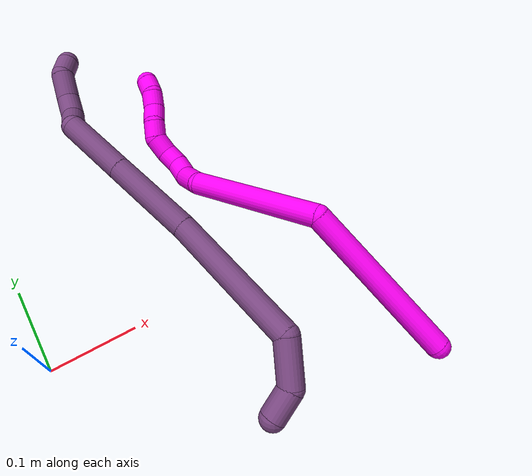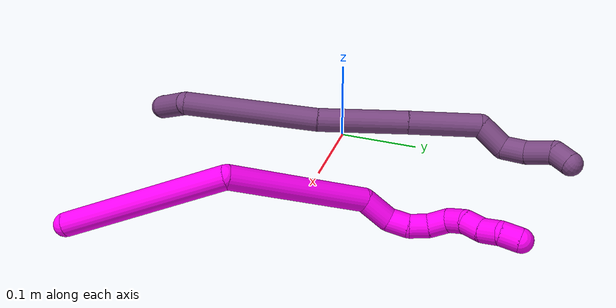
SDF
<sdf version="1.7">
 <world name="default">
  <model name="10">
   <static>0</static>
   <link name="10">
    <collision name="collision-cylinder-e_1_1_4">
     <pose>0.02539 0.083597 0.003419 -1.52992 0.294635 -0.282992</pose>
     <geometry><cylinder><radius>0.0125</radius><length>0.17487</length></cylinder></geometry>
     <surface>
      <friction><ode><mu>1.16</mu><mu2>1.16</mu2><slip1>0</slip1><slip2>0</slip2></ode></friction>
      <contact><ode><kp>1e+06</kp><kd>1</kd><max_vel>0</max_vel><min_depth>0.001</min_depth></ode></contact>
     </surface>
    </collision>
    <visual name="visual-cylinder-e_1_1_4">
     <pose>0.02539 0.083597 0.003419 -1.52992 0.294635 -0.282992</pose>
     <geometry><cylinder><radius>0.0125</radius><length>0.17487</length></cylinder></geometry>
     <material><ambient>1 0 0.964706 1</ambient></material>
    </visual>
    <collision name="collision-cylinder-e_2_4_5">
     <pose>0.056483 0.220485 0.057554 -0.810145 0.077354 -0.033182</pose>
     <geometry><cylinder><radius>0.0125</radius><length>0.147572</length></cylinder></geometry>
     <surface>
      <friction><ode><mu>1.16</mu><mu2>1.16</mu2><slip1>0</slip1><slip2>0</slip2></ode></friction>
      <contact><ode><kp>1e+06</kp><kd>1</kd><max_vel>0</max_vel><min_depth>0.001</min_depth></ode></contact>
     </surface>
    </collision>
    <visual name="visual-cylinder-e_2_4_5">
     <pose>0.056483 0.220485 0.057554 -0.810145 0.077354 -0.033182</pose>
     <geometry><cylinder><radius>0.0125</radius><length>0.147572</length></cylinder></geometry>
     <material><ambient>1 0 0.964706 1</ambient></material>
    </visual>
    <collision name="collision-cylinder-e_3_5_6">
     <pose>0.055119 0.2842 0.118996 -0.771104 -0.441292 0.181569</pose>
     <geometry><cylinder><radius>0.0125</radius><length>0.033087</length></cylinder></geometry>
     <surface>
      <friction><ode><mu>1.16</mu><mu2>1.16</mu2><slip1>0</slip1><slip2>0</slip2></ode></friction>
      <contact><ode><kp>1e+06</kp><kd>1</kd><max_vel>0</max_vel><min_depth>0.001</min_depth></ode></contact>
     </surface>
    </collision>
    <visual name="visual-cylinder-e_3_5_6">
     <pose>0.055119 0.2842 0.118996 -0.771104 -0.441292 0.181569</pose>
     <geometry><cylinder><radius>0.0125</radius><length>0.033087</length></cylinder></geometry>
     <material><ambient>1 0 0.964706 1</ambient></material>
    </visual>
    <collision name="collision-cylinder-e_4_6_7">
     <pose>0.045418 0.304968 0.132612 -1.29849 -0.240611 0.183001</pose>
     <geometry><cylinder><radius>0.0125</radius><length>0.022114</length></cylinder></geometry>
     <surface>
      <friction><ode><mu>1.16</mu><mu2>1.16</mu2><slip1>0</slip1><slip2>0</slip2></ode></friction>
      <contact><ode><kp>1e+06</kp><kd>1</kd><max_vel>0</max_vel><min_depth>0.001</min_depth></ode></contact>
     </surface>
    </collision>
    <visual name="visual-cylinder-e_4_6_7">
     <pose>0.045418 0.304968 0.132612 -1.29849 -0.240611 0.183001</pose>
     <geometry><cylinder><radius>0.0125</radius><length>0.022114</length></cylinder></geometry>
     <material><ambient>1 0 0.964706 1</ambient></material>
    </visual>
    <collision name="collision-cylinder-e_5_7_8">
     <pose>0.043751 0.325064 0.137806 -1.33866 0.09621 -0.076139</pose>
     <geometry><cylinder><radius>0.0125</radius><length>0.020138</length></cylinder></geometry>
     <surface>
      <friction><ode><mu>1.16</mu><mu2>1.16</mu2><slip1>0</slip1><slip2>0</slip2></ode></friction>
      <contact><ode><kp>1e+06</kp><kd>1</kd><max_vel>0</max_vel><min_depth>0.001</min_depth></ode></contact>
     </surface>
    </collision>
    <visual name="visual-cylinder-e_5_7_8">
     <pose>0.043751 0.325064 0.137806 -1.33866 0.09621 -0.076139</pose>
     <geometry><cylinder><radius>0.0125</radius><length>0.020138</length></cylinder></geometry>
     <material><ambient>1 0 0.964706 1</ambient></material>
    </visual>
    <collision name="collision-cylinder-e_6_8_9">
     <pose>0.047588 0.345285 0.139545 -1.62489 0.267237 -0.281907</pose>
     <geometry><cylinder><radius>0.0125</radius><length>0.021737</length></cylinder></geometry>
     <surface>
      <friction><ode><mu>1.16</mu><mu2>1.16</mu2><slip1>0</slip1><slip2>0</slip2></ode></friction>
      <contact><ode><kp>1e+06</kp><kd>1</kd><max_vel>0</max_vel><min_depth>0.001</min_depth></ode></contact>
     </surface>
    </collision>
    <visual name="visual-cylinder-e_6_8_9">
     <pose>0.047588 0.345285 0.139545 -1.62489 0.267237 -0.281907</pose>
     <geometry><cylinder><radius>0.0125</radius><length>0.021737</length></cylinder></geometry>
     <material><ambient>1 0 0.964706 1</ambient></material>
    </visual>
    <collision name="collision-cylinder-e_7_9_10">
     <pose>0.04856 0.364918 0.135204 -1.96142 -0.189192 0.281482</pose>
     <geometry><cylinder><radius>0.0125</radius><length>0.020183</length></cylinder></geometry>
     <surface>
      <friction><ode><mu>1.16</mu><mu2>1.16</mu2><slip1>0</slip1><slip2>0</slip2></ode></friction>
      <contact><ode><kp>1e+06</kp><kd>1</kd><max_vel>0</max_vel><min_depth>0.001</min_depth></ode></contact>
     </surface>
    </collision>
    <visual name="visual-cylinder-e_7_9_10">
     <pose>0.04856 0.364918 0.135204 -1.96142 -0.189192 0.281482</pose>
     <geometry><cylinder><radius>0.0125</radius><length>0.020183</length></cylinder></geometry>
     <material><ambient>1 0 0.964706 1</ambient></material>
    </visual>
    <collision name="collision-cylinder-e_8_10_11">
     <pose>0.041786 0.382815 0.130102 -1.72168 -0.504384 0.582579</pose>
     <geometry><cylinder><radius>0.0125</radius><length>0.020179</length></cylinder></geometry>
     <surface>
      <friction><ode><mu>1.16</mu><mu2>1.16</mu2><slip1>0</slip1><slip2>0</slip2></ode></friction>
      <contact><ode><kp>1e+06</kp><kd>1</kd><max_vel>0</max_vel><min_depth>0.001</min_depth></ode></contact>
     </surface>
    </collision>
    <visual name="visual-cylinder-e_8_10_11">
     <pose>0.041786 0.382815 0.130102 -1.72168 -0.504384 0.582579</pose>
     <geometry><cylinder><radius>0.0125</radius><length>0.020179</length></cylinder></geometry>
     <material><ambient>1 0 0.964706 1</ambient></material>
    </visual>
    <collision name="collision-cylinder-e_9_11_12">
     <pose>0.034717 0.400872 0.125892 -1.87068 -0.221037 0.298694</pose>
     <geometry><cylinder><radius>0.0125</radius><length>0.020006</length></cylinder></geometry>
     <surface>
      <friction><ode><mu>1.16</mu><mu2>1.16</mu2><slip1>0</slip1><slip2>0</slip2></ode></friction>
      <contact><ode><kp>1e+06</kp><kd>1</kd><max_vel>0</max_vel><min_depth>0.001</min_depth></ode></contact>
     </surface>
    </collision>
    <visual name="visual-cylinder-e_9_11_12">
     <pose>0.034717 0.400872 0.125892 -1.87068 -0.221037 0.298694</pose>
     <geometry><cylinder><radius>0.0125</radius><length>0.020006</length></cylinder></geometry>
     <material><ambient>1 0 0.964706 1</ambient></material>
    </visual>
    <collision name="collision-cylinder-e_10_12_2">
     <pose>0.029417 0.419676 0.124278 -1.43768 -0.31417 0.275432</pose>
     <geometry><cylinder><radius>0.0125</radius><length>0.020113</length></cylinder></geometry>
     <surface>
      <friction><ode><mu>1.16</mu><mu2>1.16</mu2><slip1>0</slip1><slip2>0</slip2></ode></friction>
      <contact><ode><kp>1e+06</kp><kd>1</kd><max_vel>0</max_vel><min_depth>0.001</min_depth></ode></contact>
     </surface>
    </collision>
    <visual name="visual-cylinder-e_10_12_2">
     <pose>0.029417 0.419676 0.124278 -1.43768 -0.31417 0.275432</pose>
     <geometry><cylinder><radius>0.0125</radius><length>0.020113</length></cylinder></geometry>
     <material><ambient>1 0 0.964706 1</ambient></material>
    </visual>
    <collision name="collision-sphere-2">
     <pose>0.026309 0.429156 0.125547 0 -0 0</pose>
     <geometry><sphere><radius>0.0125</radius></sphere></geometry>
     <surface>
      <friction><ode><mu>1.16</mu><mu2>1.16</mu2><slip1>0</slip1><slip2>0</slip2></ode></friction>
      <contact><ode><kp>1e+06</kp><kd>1</kd><max_vel>0</max_vel><min_depth>0.001</min_depth></ode></contact>
     </surface>
    </collision>
    <visual name="visual-sphere-2">
     <pose>0.026309 0.429156 0.125547 0 -0 0</pose>
     <geometry><sphere><radius>0.0125</radius></sphere></geometry>
     <material><ambient>1 0 0.964706 1</ambient></material>
    </visual>
    <collision name="collision-sphere-12">
     <pose>0.032524 0.410196 0.123009 0 -0 0</pose>
     <geometry><sphere><radius>0.0125</radius></sphere></geometry>
     <surface>
      <friction><ode><mu>1.16</mu><mu2>1.16</mu2><slip1>0</slip1><slip2>0</slip2></ode></friction>
      <contact><ode><kp>1e+06</kp><kd>1</kd><max_vel>0</max_vel><min_depth>0.001</min_depth></ode></contact>
     </surface>
    </collision>
    <visual name="visual-sphere-12">
     <pose>0.032524 0.410196 0.123009 0 -0 0</pose>
     <geometry><sphere><radius>0.0125</radius></sphere></geometry>
     <material><ambient>1 0 0.964706 1</ambient></material>
    </visual>
    <collision name="collision-sphere-11">
     <pose>0.036911 0.391548 0.128775 0 -0 0</pose>
     <geometry><sphere><radius>0.0125</radius></sphere></geometry>
     <surface>
      <friction><ode><mu>1.16</mu><mu2>1.16</mu2><slip1>0</slip1><slip2>0</slip2></ode></friction>
      <contact><ode><kp>1e+06</kp><kd>1</kd><max_vel>0</max_vel><min_depth>0.001</min_depth></ode></contact>
     </surface>
    </collision>
    <visual name="visual-sphere-11">
     <pose>0.036911 0.391548 0.128775 0 -0 0</pose>
     <geometry><sphere><radius>0.0125</radius></sphere></geometry>
     <material><ambient>1 0 0.964706 1</ambient></material>
    </visual>
    <collision name="collision-sphere-10">
     <pose>0.046662 0.374083 0.13143 0 -0 0</pose>
     <geometry><sphere><radius>0.0125</radius></sphere></geometry>
     <surface>
      <friction><ode><mu>1.16</mu><mu2>1.16</mu2><slip1>0</slip1><slip2>0</slip2></ode></friction>
      <contact><ode><kp>1e+06</kp><kd>1</kd><max_vel>0</max_vel><min_depth>0.001</min_depth></ode></contact>
     </surface>
    </collision>
    <visual name="visual-sphere-10">
     <pose>0.046662 0.374083 0.13143 0 -0 0</pose>
     <geometry><sphere><radius>0.0125</radius></sphere></geometry>
     <material><ambient>1 0 0.964706 1</ambient></material>
    </visual>
    <collision name="collision-sphere-9">
     <pose>0.050458 0.355753 0.138978 0 -0 0</pose>
     <geometry><sphere><radius>0.0125</radius></sphere></geometry>
     <surface>
      <friction><ode><mu>1.16</mu><mu2>1.16</mu2><slip1>0</slip1><slip2>0</slip2></ode></friction>
      <contact><ode><kp>1e+06</kp><kd>1</kd><max_vel>0</max_vel><min_depth>0.001</min_depth></ode></contact>
     </surface>
    </collision>
    <visual name="visual-sphere-9">
     <pose>0.050458 0.355753 0.138978 0 -0 0</pose>
     <geometry><sphere><radius>0.0125</radius></sphere></geometry>
     <material><ambient>1 0 0.964706 1</ambient></material>
    </visual>
    <collision name="collision-sphere-4">
     <pose>0.050781 0.167195 0.006838 0 -0 0</pose>
     <geometry><sphere><radius>0.0125</radius></sphere></geometry>
     <surface>
      <friction><ode><mu>1.16</mu><mu2>1.16</mu2><slip1>0</slip1><slip2>0</slip2></ode></friction>
      <contact><ode><kp>1e+06</kp><kd>1</kd><max_vel>0</max_vel><min_depth>0.001</min_depth></ode></contact>
     </surface>
    </collision>
    <visual name="visual-sphere-4">
     <pose>0.050781 0.167195 0.006838 0 -0 0</pose>
     <geometry><sphere><radius>0.0125</radius></sphere></geometry>
     <material><ambient>1 0 0.964706 1</ambient></material>
    </visual>
    <collision name="collision-sphere-1">
     <geometry><sphere><radius>0.0125</radius></sphere></geometry>
     <surface>
      <friction><ode><mu>1.16</mu><mu2>1.16</mu2><slip1>0</slip1><slip2>0</slip2></ode></friction>
      <contact><ode><kp>1e+06</kp><kd>1</kd><max_vel>0</max_vel><min_depth>0.001</min_depth></ode></contact>
     </surface>
    </collision>
    <visual name="visual-sphere-1">
     <geometry><sphere><radius>0.0125</radius></sphere></geometry>
     <material><ambient>1 0 0.964706 1</ambient></material>
    </visual>
    <collision name="collision-sphere-8">
     <pose>0.044718 0.334818 0.140112 0 -0 0</pose>
     <geometry><sphere><radius>0.0125</radius></sphere></geometry>
     <surface>
      <friction><ode><mu>1.16</mu><mu2>1.16</mu2><slip1>0</slip1><slip2>0</slip2></ode></friction>
      <contact><ode><kp>1e+06</kp><kd>1</kd><max_vel>0</max_vel><min_depth>0.001</min_depth></ode></contact>
     </surface>
    </collision>
    <visual name="visual-sphere-8">
     <pose>0.044718 0.334818 0.140112 0 -0 0</pose>
     <geometry><sphere><radius>0.0125</radius></sphere></geometry>
     <material><ambient>1 0 0.964706 1</ambient></material>
    </visual>
    <collision name="collision-sphere-5">
     <pose>0.062185 0.273775 0.108269 0 -0 0</pose>
     <geometry><sphere><radius>0.0125</radius></sphere></geometry>
     <surface>
      <friction><ode><mu>1.16</mu><mu2>1.16</mu2><slip1>0</slip1><slip2>0</slip2></ode></friction>
      <contact><ode><kp>1e+06</kp><kd>1</kd><max_vel>0</max_vel><min_depth>0.001</min_depth></ode></contact>
     </surface>
    </collision>
    <visual name="visual-sphere-5">
     <pose>0.062185 0.273775 0.108269 0 -0 0</pose>
     <geometry><sphere><radius>0.0125</radius></sphere></geometry>
     <material><ambient>1 0 0.964706 1</ambient></material>
    </visual>
    <collision name="collision-sphere-6">
     <pose>0.048053 0.294625 0.129724 0 -0 0</pose>
     <geometry><sphere><radius>0.0125</radius></sphere></geometry>
     <surface>
      <friction><ode><mu>1.16</mu><mu2>1.16</mu2><slip1>0</slip1><slip2>0</slip2></ode></friction>
      <contact><ode><kp>1e+06</kp><kd>1</kd><max_vel>0</max_vel><min_depth>0.001</min_depth></ode></contact>
     </surface>
    </collision>
    <visual name="visual-sphere-6">
     <pose>0.048053 0.294625 0.129724 0 -0 0</pose>
     <geometry><sphere><radius>0.0125</radius></sphere></geometry>
     <material><ambient>1 0 0.964706 1</ambient></material>
    </visual>
    <collision name="collision-sphere-7">
     <pose>0.042783 0.315311 0.1355 0 -0 0</pose>
     <geometry><sphere><radius>0.0125</radius></sphere></geometry>
     <surface>
      <friction><ode><mu>1.16</mu><mu2>1.16</mu2><slip1>0</slip1><slip2>0</slip2></ode></friction>
      <contact><ode><kp>1e+06</kp><kd>1</kd><max_vel>0</max_vel><min_depth>0.001</min_depth></ode></contact>
     </surface>
    </collision>
    <visual name="visual-sphere-7">
     <pose>0.042783 0.315311 0.1355 0 -0 0</pose>
     <geometry><sphere><radius>0.0125</radius></sphere></geometry>
     <material><ambient>1 0 0.964706 1</ambient></material>
    </visual>
    <inertial>
     <pose>0.041257 0.217812 0.064284 0 -0 0</pose>
     <mass>0.5</mass>
     <inertia>
      <ixx>0.000577</ixx>
      <ixy>0</ixy>
      <ixz>0</ixz>
      <iyy>0.000153</iyy>
      <iyz>0</iyz>
      <izz>-0.000782</izz>
     </inertia>
    </inertial>
   </link>
   <pose>0.354742 -0.179537 0.059899 2.88189 -0.636155 -2.95295</pose>
  </model>
  <model name="20">
   <static>0</static>
   <link name="20">
    <collision name="collision-cylinder-e_1_1_4">
     <pose>0.008711 -0.000394 0.012426 0.031728 0.61117 0.01001</pose>
     <geometry><cylinder><radius>0.0125</radius><length>0.030361</length></cylinder></geometry>
     <surface>
      <friction><ode><mu>1.16</mu><mu2>1.16</mu2><slip1>0</slip1><slip2>0</slip2></ode></friction>
      <contact><ode><kp>1e+06</kp><kd>1</kd><max_vel>0</max_vel><min_depth>0.001</min_depth></ode></contact>
     </surface>
    </collision>
    <visual name="visual-cylinder-e_1_1_4">
     <pose>0.008711 -0.000394 0.012426 0.031728 0.61117 0.01001</pose>
     <geometry><cylinder><radius>0.0125</radius><length>0.030361</length></cylinder></geometry>
     <material><ambient>0.478431 0.278431 0.509804 1</ambient></material>
    </visual>
    <collision name="collision-cylinder-e_2_4_5">
     <pose>0.021719 0.009945 0.044704 -0.495667 0.188169 -0.047745</pose>
     <geometry><cylinder><radius>0.0125</radius><length>0.045948</length></cylinder></geometry>
     <surface>
      <friction><ode><mu>1.16</mu><mu2>1.16</mu2><slip1>0</slip1><slip2>0</slip2></ode></friction>
      <contact><ode><kp>1e+06</kp><kd>1</kd><max_vel>0</max_vel><min_depth>0.001</min_depth></ode></contact>
     </surface>
    </collision>
    <visual name="visual-cylinder-e_2_4_5">
     <pose>0.021719 0.009945 0.044704 -0.495667 0.188169 -0.047745</pose>
     <geometry><cylinder><radius>0.0125</radius><length>0.045948</length></cylinder></geometry>
     <material><ambient>0.478431 0.278431 0.509804 1</ambient></material>
    </visual>
    <collision name="collision-cylinder-e_3_5_6">
     <pose>0.017985 0.087467 0.088827 -1.22224 -0.112544 0.07889</pose>
     <geometry><cylinder><radius>0.0125</radius><length>0.143028</length></cylinder></geometry>
     <surface>
      <friction><ode><mu>1.16</mu><mu2>1.16</mu2><slip1>0</slip1><slip2>0</slip2></ode></friction>
      <contact><ode><kp>1e+06</kp><kd>1</kd><max_vel>0</max_vel><min_depth>0.001</min_depth></ode></contact>
     </surface>
    </collision>
    <visual name="visual-cylinder-e_3_5_6">
     <pose>0.017985 0.087467 0.088827 -1.22224 -0.112544 0.07889</pose>
     <geometry><cylinder><radius>0.0125</radius><length>0.143028</length></cylinder></geometry>
     <material><ambient>0.478431 0.278431 0.509804 1</ambient></material>
    </visual>
    <collision name="collision-cylinder-e_4_6_7">
     <pose>-0.000296 0.197724 0.129726 -1.20541 -0.216772 0.149472</pose>
     <geometry><cylinder><radius>0.0125</radius><length>0.095312</length></cylinder></geometry>
     <surface>
      <friction><ode><mu>1.16</mu><mu2>1.16</mu2><slip1>0</slip1><slip2>0</slip2></ode></friction>
      <contact><ode><kp>1e+06</kp><kd>1</kd><max_vel>0</max_vel><min_depth>0.001</min_depth></ode></contact>
     </surface>
    </collision>
    <visual name="visual-cylinder-e_4_6_7">
     <pose>-0.000296 0.197724 0.129726 -1.20541 -0.216772 0.149472</pose>
     <geometry><cylinder><radius>0.0125</radius><length>0.095312</length></cylinder></geometry>
     <material><ambient>0.478431 0.278431 0.509804 1</ambient></material>
    </visual>
    <collision name="collision-cylinder-e_5_7_8">
     <pose>-0.018407 0.276418 0.159466 -1.21451 -0.206173 0.14352</pose>
     <geometry><cylinder><radius>0.0125</radius><length>0.076798</length></cylinder></geometry>
     <surface>
      <friction><ode><mu>1.16</mu><mu2>1.16</mu2><slip1>0</slip1><slip2>0</slip2></ode></friction>
      <contact><ode><kp>1e+06</kp><kd>1</kd><max_vel>0</max_vel><min_depth>0.001</min_depth></ode></contact>
     </surface>
    </collision>
    <visual name="visual-cylinder-e_5_7_8">
     <pose>-0.018407 0.276418 0.159466 -1.21451 -0.206173 0.14352</pose>
     <geometry><cylinder><radius>0.0125</radius><length>0.076798</length></cylinder></geometry>
     <material><ambient>0.478431 0.278431 0.509804 1</ambient></material>
    </visual>
    <collision name="collision-cylinder-e_6_8_9">
     <pose>-0.019133 0.326344 0.172487 -1.57683 0.451803 -0.454444</pose>
     <geometry><cylinder><radius>0.0125</radius><length>0.032683</length></cylinder></geometry>
     <surface>
      <friction><ode><mu>1.16</mu><mu2>1.16</mu2><slip1>0</slip1><slip2>0</slip2></ode></friction>
      <contact><ode><kp>1e+06</kp><kd>1</kd><max_vel>0</max_vel><min_depth>0.001</min_depth></ode></contact>
     </surface>
    </collision>
    <visual name="visual-cylinder-e_6_8_9">
     <pose>-0.019133 0.326344 0.172487 -1.57683 0.451803 -0.454444</pose>
     <geometry><cylinder><radius>0.0125</radius><length>0.032683</length></cylinder></geometry>
     <material><ambient>0.478431 0.278431 0.509804 1</ambient></material>
    </visual>
    <collision name="collision-cylinder-e_7_9_10">
     <pose>-0.009723 0.351096 0.179647 -0.945912 0.181636 -0.09313</pose>
     <geometry><cylinder><radius>0.0125</radius><length>0.025197</length></cylinder></geometry>
     <surface>
      <friction><ode><mu>1.16</mu><mu2>1.16</mu2><slip1>0</slip1><slip2>0</slip2></ode></friction>
      <contact><ode><kp>1e+06</kp><kd>1</kd><max_vel>0</max_vel><min_depth>0.001</min_depth></ode></contact>
     </surface>
    </collision>
    <visual name="visual-cylinder-e_7_9_10">
     <pose>-0.009723 0.351096 0.179647 -0.945912 0.181636 -0.09313</pose>
     <geometry><cylinder><radius>0.0125</radius><length>0.025197</length></cylinder></geometry>
     <material><ambient>0.478431 0.278431 0.509804 1</ambient></material>
    </visual>
    <collision name="collision-cylinder-e_8_10_11">
     <pose>-0.005847 0.370645 0.198393 -0.690591 0.106857 -0.038469</pose>
     <geometry><cylinder><radius>0.0125</radius><length>0.029998</length></cylinder></geometry>
     <surface>
      <friction><ode><mu>1.16</mu><mu2>1.16</mu2><slip1>0</slip1><slip2>0</slip2></ode></friction>
      <contact><ode><kp>1e+06</kp><kd>1</kd><max_vel>0</max_vel><min_depth>0.001</min_depth></ode></contact>
     </surface>
    </collision>
    <visual name="visual-cylinder-e_8_10_11">
     <pose>-0.005847 0.370645 0.198393 -0.690591 0.106857 -0.038469</pose>
     <geometry><cylinder><radius>0.0125</radius><length>0.029998</length></cylinder></geometry>
     <material><ambient>0.478431 0.278431 0.509804 1</ambient></material>
    </visual>
    <collision name="collision-cylinder-e_9_11_2">
     <pose>0.002168 0.386614 0.214774 -0.923945 0.669559 -0.343015</pose>
     <geometry><cylinder><radius>0.0125</radius><length>0.020676</length></cylinder></geometry>
     <surface>
      <friction><ode><mu>1.16</mu><mu2>1.16</mu2><slip1>0</slip1><slip2>0</slip2></ode></friction>
      <contact><ode><kp>1e+06</kp><kd>1</kd><max_vel>0</max_vel><min_depth>0.001</min_depth></ode></contact>
     </surface>
    </collision>
    <visual name="visual-cylinder-e_9_11_2">
     <pose>0.002168 0.386614 0.214774 -0.923945 0.669559 -0.343015</pose>
     <geometry><cylinder><radius>0.0125</radius><length>0.020676</length></cylinder></geometry>
     <material><ambient>0.478431 0.278431 0.509804 1</ambient></material>
    </visual>
    <collision name="collision-sphere-2">
     <pose>0.008585 0.393082 0.219659 0 -0 0</pose>
     <geometry><sphere><radius>0.0125</radius></sphere></geometry>
     <surface>
      <friction><ode><mu>1.16</mu><mu2>1.16</mu2><slip1>0</slip1><slip2>0</slip2></ode></friction>
      <contact><ode><kp>1e+06</kp><kd>1</kd><max_vel>0</max_vel><min_depth>0.001</min_depth></ode></contact>
     </surface>
    </collision>
    <visual name="visual-sphere-2">
     <pose>0.008585 0.393082 0.219659 0 -0 0</pose>
     <geometry><sphere><radius>0.0125</radius></sphere></geometry>
     <material><ambient>0.478431 0.278431 0.509804 1</ambient></material>
    </visual>
    <collision name="collision-sphere-11">
     <pose>-0.004248 0.380145 0.209889 0 -0 0</pose>
     <geometry><sphere><radius>0.0125</radius></sphere></geometry>
     <surface>
      <friction><ode><mu>1.16</mu><mu2>1.16</mu2><slip1>0</slip1><slip2>0</slip2></ode></friction>
      <contact><ode><kp>1e+06</kp><kd>1</kd><max_vel>0</max_vel><min_depth>0.001</min_depth></ode></contact>
     </surface>
    </collision>
    <visual name="visual-sphere-11">
     <pose>-0.004248 0.380145 0.209889 0 -0 0</pose>
     <geometry><sphere><radius>0.0125</radius></sphere></geometry>
     <material><ambient>0.478431 0.278431 0.509804 1</ambient></material>
    </visual>
    <collision name="collision-sphere-10">
     <pose>-0.007447 0.361146 0.186896 0 -0 0</pose>
     <geometry><sphere><radius>0.0125</radius></sphere></geometry>
     <surface>
      <friction><ode><mu>1.16</mu><mu2>1.16</mu2><slip1>0</slip1><slip2>0</slip2></ode></friction>
      <contact><ode><kp>1e+06</kp><kd>1</kd><max_vel>0</max_vel><min_depth>0.001</min_depth></ode></contact>
     </surface>
    </collision>
    <visual name="visual-sphere-10">
     <pose>-0.007447 0.361146 0.186896 0 -0 0</pose>
     <geometry><sphere><radius>0.0125</radius></sphere></geometry>
     <material><ambient>0.478431 0.278431 0.509804 1</ambient></material>
    </visual>
    <collision name="collision-sphere-9">
     <pose>-0.011999 0.341046 0.172398 0 -0 0</pose>
     <geometry><sphere><radius>0.0125</radius></sphere></geometry>
     <surface>
      <friction><ode><mu>1.16</mu><mu2>1.16</mu2><slip1>0</slip1><slip2>0</slip2></ode></friction>
      <contact><ode><kp>1e+06</kp><kd>1</kd><max_vel>0</max_vel><min_depth>0.001</min_depth></ode></contact>
     </surface>
    </collision>
    <visual name="visual-sphere-9">
     <pose>-0.011999 0.341046 0.172398 0 -0 0</pose>
     <geometry><sphere><radius>0.0125</radius></sphere></geometry>
     <material><ambient>0.478431 0.278431 0.509804 1</ambient></material>
    </visual>
    <collision name="collision-sphere-4">
     <pose>0.017422 -0.000789 0.024852 0 -0 0</pose>
     <geometry><sphere><radius>0.0125</radius></sphere></geometry>
     <surface>
      <friction><ode><mu>1.16</mu><mu2>1.16</mu2><slip1>0</slip1><slip2>0</slip2></ode></friction>
      <contact><ode><kp>1e+06</kp><kd>1</kd><max_vel>0</max_vel><min_depth>0.001</min_depth></ode></contact>
     </surface>
    </collision>
    <visual name="visual-sphere-4">
     <pose>0.017422 -0.000789 0.024852 0 -0 0</pose>
     <geometry><sphere><radius>0.0125</radius></sphere></geometry>
     <material><ambient>0.478431 0.278431 0.509804 1</ambient></material>
    </visual>
    <collision name="collision-sphere-1">
     <geometry><sphere><radius>0.0125</radius></sphere></geometry>
     <surface>
      <friction><ode><mu>1.16</mu><mu2>1.16</mu2><slip1>0</slip1><slip2>0</slip2></ode></friction>
      <contact><ode><kp>1e+06</kp><kd>1</kd><max_vel>0</max_vel><min_depth>0.001</min_depth></ode></contact>
     </surface>
    </collision>
    <visual name="visual-sphere-1">
     <geometry><sphere><radius>0.0125</radius></sphere></geometry>
     <material><ambient>0.478431 0.278431 0.509804 1</ambient></material>
    </visual>
    <collision name="collision-sphere-8">
     <pose>-0.026268 0.311643 0.172575 0 -0 0</pose>
     <geometry><sphere><radius>0.0125</radius></sphere></geometry>
     <surface>
      <friction><ode><mu>1.16</mu><mu2>1.16</mu2><slip1>0</slip1><slip2>0</slip2></ode></friction>
      <contact><ode><kp>1e+06</kp><kd>1</kd><max_vel>0</max_vel><min_depth>0.001</min_depth></ode></contact>
     </surface>
    </collision>
    <visual name="visual-sphere-8">
     <pose>-0.026268 0.311643 0.172575 0 -0 0</pose>
     <geometry><sphere><radius>0.0125</radius></sphere></geometry>
     <material><ambient>0.478431 0.278431 0.509804 1</ambient></material>
    </visual>
    <collision name="collision-sphere-5">
     <pose>0.026017 0.020679 0.064556 0 -0 0</pose>
     <geometry><sphere><radius>0.0125</radius></sphere></geometry>
     <surface>
      <friction><ode><mu>1.16</mu><mu2>1.16</mu2><slip1>0</slip1><slip2>0</slip2></ode></friction>
      <contact><ode><kp>1e+06</kp><kd>1</kd><max_vel>0</max_vel><min_depth>0.001</min_depth></ode></contact>
     </surface>
    </collision>
    <visual name="visual-sphere-5">
     <pose>0.026017 0.020679 0.064556 0 -0 0</pose>
     <geometry><sphere><radius>0.0125</radius></sphere></geometry>
     <material><ambient>0.478431 0.278431 0.509804 1</ambient></material>
    </visual>
    <collision name="collision-sphere-6">
     <pose>0.009954 0.154256 0.113097 0 -0 0</pose>
     <geometry><sphere><radius>0.0125</radius></sphere></geometry>
     <surface>
      <friction><ode><mu>1.16</mu><mu2>1.16</mu2><slip1>0</slip1><slip2>0</slip2></ode></friction>
      <contact><ode><kp>1e+06</kp><kd>1</kd><max_vel>0</max_vel><min_depth>0.001</min_depth></ode></contact>
     </surface>
    </collision>
    <visual name="visual-sphere-6">
     <pose>0.009954 0.154256 0.113097 0 -0 0</pose>
     <geometry><sphere><radius>0.0125</radius></sphere></geometry>
     <material><ambient>0.478431 0.278431 0.509804 1</ambient></material>
    </visual>
    <collision name="collision-sphere-7">
     <pose>-0.010546 0.241193 0.146356 0 -0 0</pose>
     <geometry><sphere><radius>0.0125</radius></sphere></geometry>
     <surface>
      <friction><ode><mu>1.16</mu><mu2>1.16</mu2><slip1>0</slip1><slip2>0</slip2></ode></friction>
      <contact><ode><kp>1e+06</kp><kd>1</kd><max_vel>0</max_vel><min_depth>0.001</min_depth></ode></contact>
     </surface>
    </collision>
    <visual name="visual-sphere-7">
     <pose>-0.010546 0.241193 0.146356 0 -0 0</pose>
     <geometry><sphere><radius>0.0125</radius></sphere></geometry>
     <material><ambient>0.478431 0.278431 0.509804 1</ambient></material>
    </visual>
    <inertial>
     <pose>0.002784 0.183308 0.120606 0 -0 0</pose>
     <mass>0.5</mass>
     <inertia>
      <ixx>0.000417</ixx>
      <ixy>0</ixy>
      <ixz>0</ixz>
      <iyy>0.000214</iyy>
      <iyz>0</iyz>
      <izz>-0.00029</izz>
     </inertia>
    </inertial>
   </link>
   <pose>0.16974 -0.162251 0.102473 -0.479084 0.420898 0.046027</pose>
  </model>
 </world>
</sdf>
